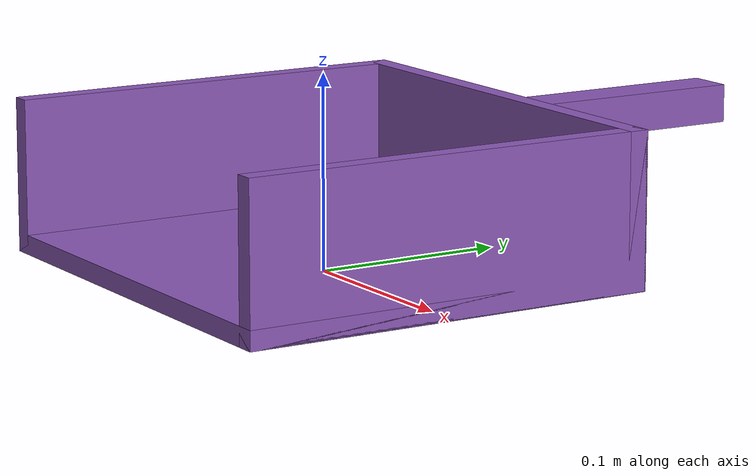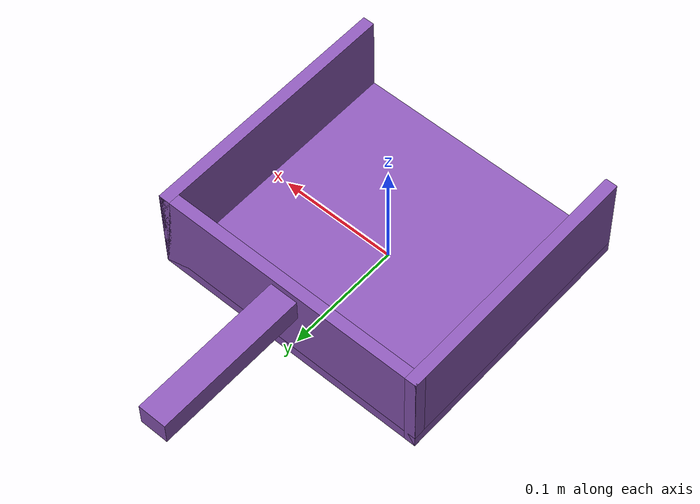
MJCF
<mujoco model="dustpan_prim_deep_purple">
  <compiler angle="radian"/>
  <asset>
  </asset>
  <worldbody>
    <body name="dustpan_prim_deep_purple">
      <freejoint/>
      <geom name="dustpan_prim_deep_purple_g0" type="box" size="0.12 0.11 0.005" pos="0 0 0.005" rgba="0.55 0.35 0.72 1" mass="0.01" friction="0.05 0.05 0.005" condim="4"/>
      <geom name="dustpan_prim_deep_purple_g1" type="box" size="0.12 0.005 0.04" pos="0 0.105 0.04" rgba="0.55 0.35 0.72 1" mass="0.01" friction="0.05 0.05 0.005" condim="4"/>
      <geom name="dustpan_prim_deep_purple_g2" type="box" size="0.005 0.11 0.04" pos="-0.115 0 0.04" rgba="0.55 0.35 0.72 1" mass="0.01" friction="0.05 0.05 0.005" condim="4"/>
      <geom name="dustpan_prim_deep_purple_g3" type="box" size="0.005 0.11 0.04" pos="0.115 0 0.04" rgba="0.55 0.35 0.72 1" mass="0.01" friction="0.05 0.05 0.005" condim="4"/>
      <geom name="dustpan_prim_deep_purple_g4" type="box" size="0.012 0.065 0.01" pos="0 0.175 0.064" rgba="0.55 0.35 0.72 1" mass="0.01" friction="0.05 0.05 0.005" condim="4"/>
    </body>
  </worldbody>
</mujoco>
